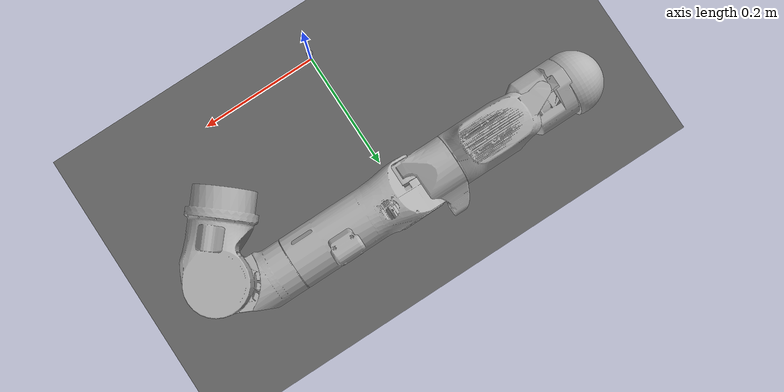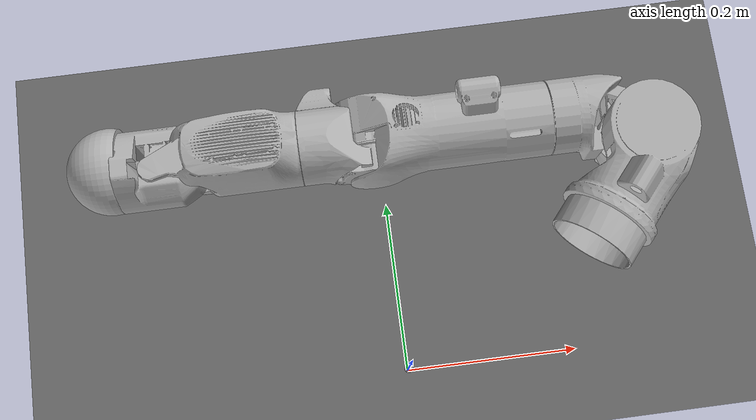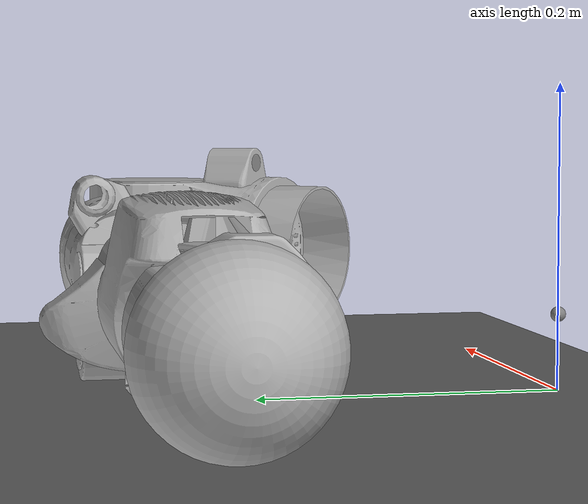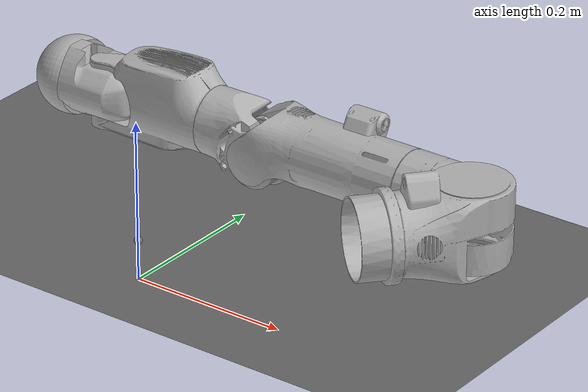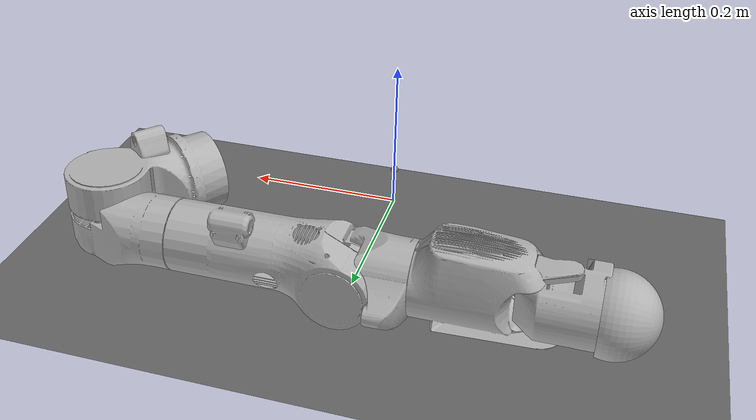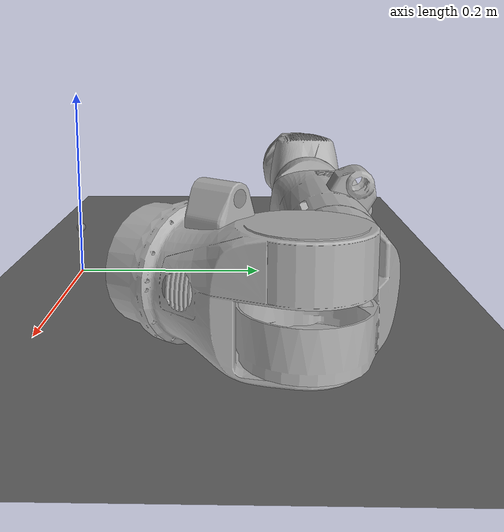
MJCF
<mujoco model="Alexander">
  <default>
    <joint limited="true" damping="0.01" armature="0.01" frictionloss="0.01" />
    <geom condim="4" contype="1" conaffinity="15" friction="0.9 0.2 0.2" solref="0.001 2" />
    <motor ctrllimited="true" />
    <equality solref="0.001 2" />
    <default class="visualgeom">
      <geom material="visualgeom" condim="1" contype="0" conaffinity="0" />
    </default>
  </default>

  <compiler angle="radian" meshdir="../meshes/" eulerseq="zyx" autolimits="true" />

  <asset>
    <texture name="texplane" type="2d" builtin="checker" rgb1=".0 .0 .0" rgb2=".8 .8 .8" width="100" height="100" />
    <material name="matplane" reflectance="0." texture="texplane" texrepeat="1 1" texuniform="true" />
    <material name="default_material" rgba="0.7 0.7 0.7 1" />
    <mesh name="LeftShoulderPitchLink.obj" file="cycloidal_arm/LeftShoulderPitchLink.obj" />
    <mesh name="LeftShoulderRollLink_shortBicep.obj" file="cycloidal_arm/LeftShoulderRollLink_shortBicep.obj" />
    <mesh name="LeftShoulderYawLink.obj" file="cycloidal_arm/LeftShoulderYawLink.obj" />
    <mesh name="LeftElbowPitchLink.obj" file="cycloidal_arm/LeftElbowPitchLink.obj" />
    <mesh name="LeftWristYawLink.obj" file="cycloidal_arm/LeftWristYawLink.obj" />
    <mesh name="LeftWristRollLink.obj" file="cycloidal_arm/LeftWristRollLink.obj" />
    <mesh name="nub.obj" file="cycloidal_arm/nub.obj" />
  </asset>

  <worldbody>
    <light directional="true" diffuse="0.4 0.4 0.4" specular="0.1 0.1 0.1" pos="0 0 5.0" dir="0 0 -1" castshadow="false" />
    <light directional="true" diffuse="0.6 0.6 0.6" specular="0.2 0.2 0.2" pos="0 0 4" dir="0 0 -1" />
    <geom name="ground" type="plane" pos="0 0 0" size="10 10 0.001" quat="1 0 0 0" material="matplane" condim="3" conaffinity="15" />
    <body name="root" pos="0 0 0.05" quat="1 0 1 0">
      <freejoint name="root" />
      <site name="root_site" pos="0 0 0" quat="1 0 0 0" />
      <body name="TORSO_LINK" pos="0 0 0" quat="1 0 0 0">
        <inertial pos="0 0 0" quat="1.0 0.0 0.0 0.0" mass="0.1" diaginertia="1e-05 1e-05 1e-05" />
        <body name="LEFT_SHOULDER_Y_LINK" pos="-0.025 0.1 0.214" quat="0.9396925696192966 0.34202028390474665 0.0 0.0">
          <joint name="LEFT_SHOULDER_Y" type="hinge" range="-3.141592 1.22173" axis="0.0 1.0 0.0" />
          <inertial pos="-0.00264 0.12135 -0.006824" quat="1.0 0.0 0.0 0.0" mass="2.99" diaginertia="0.0111046 0.0051699 0.01176" />
          <geom name="LEFT_SHOULDER_Y_LINK_visual_0" pos="0.0 0.0 0.0" quat="1.0 0.0 0.0 0.0" material="default_material" type="mesh" mesh="LeftShoulderPitchLink.obj" />
          <body name="LEFT_SHOULDER_X_LINK" pos="0.0 0.15676000 -0.01300000" quat="0.9396925696192966 -0.34202028390474665 0.0 0.0">
            <joint name="LEFT_SHOULDER_X" type="hinge" range="-0.349066 2.79253" axis="1 0 0" />
            <inertial pos="0.01251711 0.0188309 -0.03849849" quat="1.0 0.0 0.0 0.0" mass="0.972" diaginertia="0.0029485 0.0023587 0.0014366" />
            <geom name="LEFT_SHOULDER_X_LINK_visual_0" pos="0.0 0.0 0.0" quat="1.0 0.0 0.0 0.0" material="default_material" type="mesh" mesh="LeftShoulderRollLink_shortBicep.obj" />
            <body name="LEFT_SHOULDER_Z_LINK" pos="0.0 0.035 0.0" quat="1.0 0.0 0.0 0.0">
              <joint name="LEFT_SHOULDER_Z" type="hinge" range="-1.91986 1.22173" axis="0.0 0.0 1.0" />
              <inertial pos="0.00510403 0.00314332 -0.21695413" quat="1.0 0.0 0.0 0.0" mass="2.91" diaginertia="0.0267829 0.0265514 0.003052" />
              <geom name="LEFT_SHOULDER_Z_LINK_visual_0" pos="0.0 0.0 0.0867" quat="1.0 0.0 0.0 0.0" material="default_material" type="mesh" mesh="LeftShoulderYawLink.obj" />
              <body name="LEFT_ELBOW_Y_LINK" pos="0.015 0.0 -0.3127" quat="1.0 0.0 0.0 0.0">
                <joint name="LEFT_ELBOW_Y" type="hinge" range="-2.35619 0.174532925" axis="0.0 1.0 0.0" />
                <inertial pos="-0.01180322 -0.0035763 -0.04946747" quat="1.0 0.0 0.0 0.0" mass="0.45" diaginertia="0.0007362 0.0006567 0.0004897" />
                <geom name="LEFT_ELBOW_Y_LINK_visual_0" pos="0.0 0.0 0.0" quat="1.0 0.0 0.0 0.0" material="default_material" type="mesh" mesh="LeftElbowPitchLink.obj" />
                <body name="LEFT_WRIST_Z_LINK" pos="-0.015 0.0 0.0" quat="1.0 0.0 0.0 0.0">
                  <joint name="LEFT_WRIST_Z" type="hinge" range="-2.61799 2.61799" axis="0.0 0.0 1.0" />
                  <inertial pos="-0.00263832 -0.00050534 -0.13018376" quat="1.0 0.0 0.0 0.0" mass="1.547" diaginertia="0.0037869 0.004071 0.0015203" />
                  <geom name="LEFT_WRIST_Z_LINK_visual_0" pos="0.0 0.0 0.0" quat="1.0 0.0 0.0 0.0" material="default_material" type="mesh" mesh="LeftWristYawLink.obj" />
                  <body name="LEFT_WRIST_X_LINK" pos="0.0 -0.013 -0.25" quat="1.0 0.0 0.0 0.0">
                    <joint name="LEFT_WRIST_X" type="hinge" range="-1.8326 0.610865" axis="1 0 0" />
                    <inertial pos="0.00004053 0.01038395 0.00035532" quat="1.0 0.0 0.0 0.0" mass="0.909" diaginertia="0.000477 0.0004902 0.000514" />
                    <geom name="LEFT_WRIST_X_LINK_visual_0" pos="0.0 0.0 0.0" quat="1.0 0.0 0.0 0.0" material="default_material" type="mesh" mesh="LeftWristRollLink.obj" />
                    <body name="LEFT_GRIPPER_Z_LINK" pos="0.0 0.013 -0.031" quat="1.0 0.0 0.0 0.0">
                      <joint name="LEFT_GRIPPER_Z" type="hinge" range="-2.61799 2.61799" axis="0.0 0.0 1.0" />
                      <inertial pos="-0.000217 -0.000349 0.009761" quat="1.0 0.0 0.0 0.0" mass="0.251" diaginertia="7.22e-05 7.47e-05 3.24e-05" />
                      <geom name="LEFT_GRIPPER_Z_LINK_visual_0" pos="0.0 0.0 0.0" quat="0.7073882691671998 0.0 0.706825181105366 0.0" material="default_material" type="mesh" mesh="nub.obj" />
                    </body>
                  </body>
                </body>
              </body>
            </body>
          </body>
        </body>
      </body>
    </body>
  </worldbody>

  <actuator>
    <position name="LEFT_SHOULDER_Y_ctrl" joint="LEFT_SHOULDER_Y" kp="40.00000000" kv="2.00000000" forcerange="-150.00000000 150.00000000" forcelimited="true" ctrlrange="-3.141592 1.22173" ctrllimited="true" />
    <position name="LEFT_SHOULDER_X_ctrl" joint="LEFT_SHOULDER_X" kp="40.00000000" kv="2.00000000" forcerange="-150.00000000 150.00000000" forcelimited="true" ctrlrange="-0.349066 2.79253" ctrllimited="true" />
    <position name="LEFT_SHOULDER_Z_ctrl" joint="LEFT_SHOULDER_Z" kp="40.00000000" kv="2.00000000" forcerange="-80.00000000 80.00000000" forcelimited="true" ctrlrange="-1.91986 1.22173" ctrllimited="true" />
    <position name="LEFT_ELBOW_Y_ctrl" joint="LEFT_ELBOW_Y" kp="40.00000000" kv="2.00000000" forcerange="-80.00000000 80.00000000" forcelimited="true" ctrlrange="-2.35619 0.174532925" ctrllimited="true" />
    <position name="LEFT_WRIST_Z_ctrl" joint="LEFT_WRIST_Z" kp="40.00000000" kv="2.00000000" forcerange="-20.00000000 20.00000000" forcelimited="true" ctrlrange="-2.61799 2.61799" ctrllimited="true" />
    <position name="LEFT_WRIST_X_ctrl" joint="LEFT_WRIST_X" kp="40.00000000" kv="2.00000000" forcerange="-20.00000000 20.00000000" forcelimited="true" ctrlrange="-1.8326 0.610865" ctrllimited="true" />
    <position name="LEFT_GRIPPER_Z_ctrl" joint="LEFT_GRIPPER_Z" kp="40.00000000" kv="2.00000000" forcerange="-20.00000000 20.00000000" forcelimited="true" ctrlrange="-2.61799 2.61799" ctrllimited="true" />
  </actuator>

  <sensor>
    <framepos name="base_link_pos" objtype="site" objname="root_site" />
    <framequat name="base_link_quat" objtype="site" objname="root_site" />
    <framelinvel name="base_link_vel" objtype="site" objname="root_site" />
    <frameangvel name="base_link_ang_vel" objtype="site" objname="root_site" />
  </sensor>
</mujoco>
